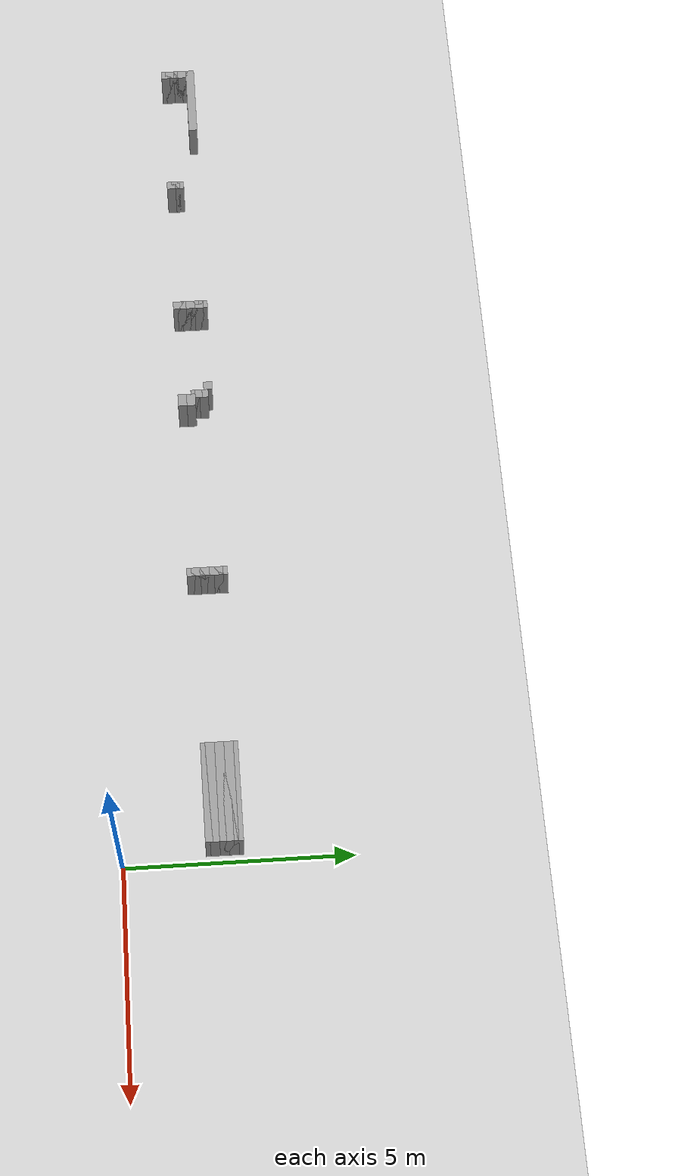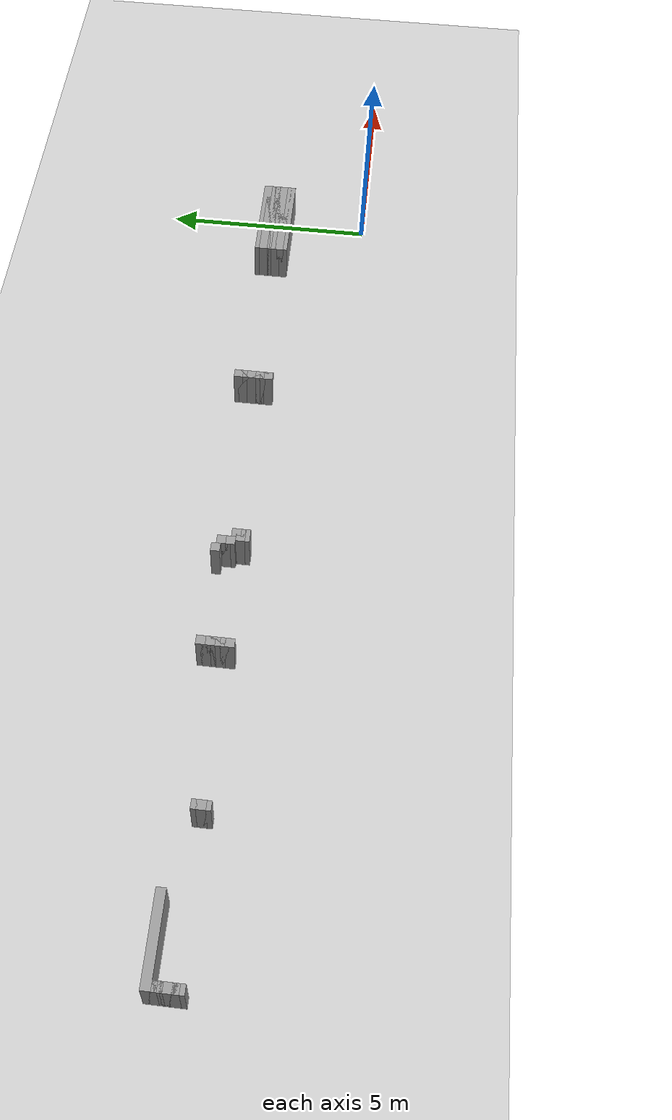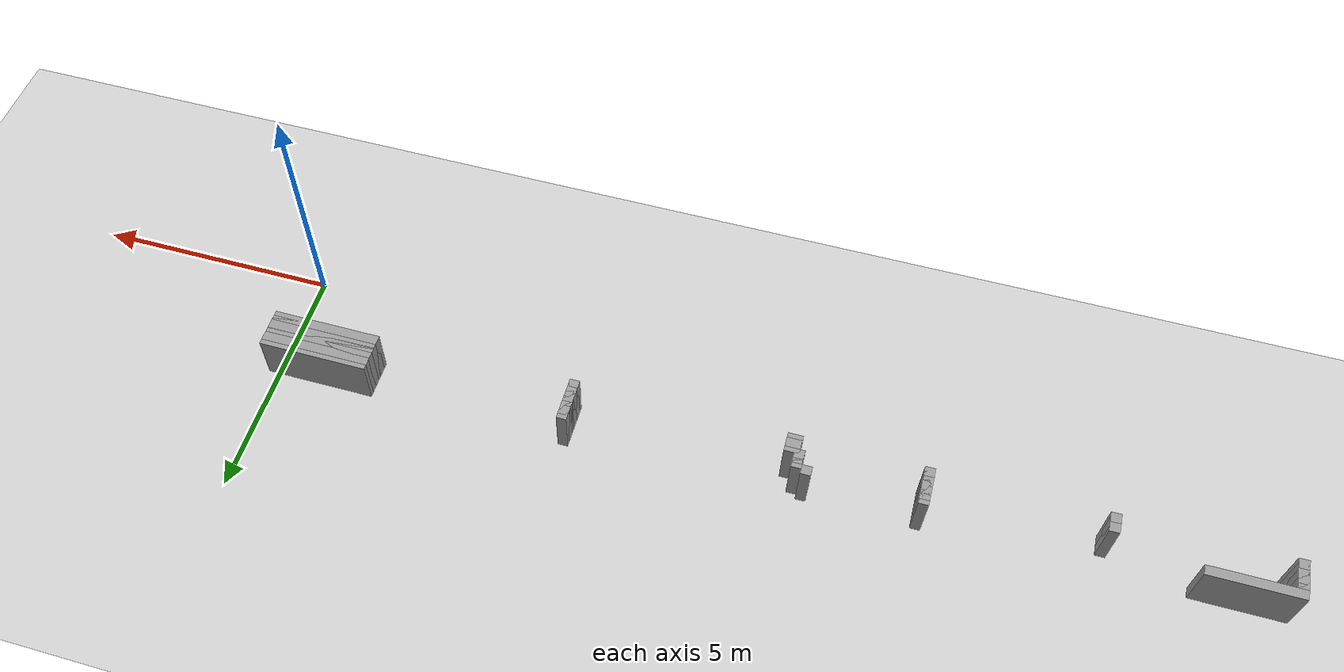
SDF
<sdf version="1.6">
 <world name="GridMap">
  <include><uri>model://sun</uri></include>
  <include><uri>model://ground_plane</uri></include>
  <model name="GridMap">
   <link name="Wall_(62.0,18.0)">
    <collision name="Wall_(62.0,18.0)_Collision">
     <geometry><box><size>0.2 0.2 1.0</size></box></geometry>
     <pose>-6.2 1.8 0.5 0 -0 0</pose>
    </collision>
    <visual name="Wall_(62.0,18.0)_Visual">
     <geometry><box><size>0.2 0.2 1.0</size></box></geometry>
     <pose>-6.2 1.8 0.5 0 -0 0</pose>
     <material>
      <script><uri>file://media/materials/scripts/gazebo.material</uri><name>Gazebo/Grey</name></script>
      <ambient>1 1 1 1</ambient>
     </material>
     <meta><layer>0</layer></meta>
    </visual>
    <pose>0 0 0.5 0 -0 0</pose>
   </link>
   <link name="Wall_(105.5,18.0)">
    <collision name="Wall_(105.5,18.0)_Collision">
     <geometry><box><size>0.30000000000000004 0.2 1.0</size></box></geometry>
     <pose>-10.55 1.8 0.5 0 -0 0</pose>
    </collision>
    <visual name="Wall_(105.5,18.0)_Visual">
     <geometry><box><size>0.30000000000000004 0.2 1.0</size></box></geometry>
     <pose>-10.55 1.8 0.5 0 -0 0</pose>
     <material>
      <script><uri>file://media/materials/scripts/gazebo.material</uri><name>Gazebo/Grey</name></script>
      <ambient>1 1 1 1</ambient>
     </material>
     <meta><layer>0</layer></meta>
    </visual>
    <pose>0 0 0.5 0 -0 0</pose>
   </link>
   <link name="Wall_(131.0,18.0)">
    <collision name="Wall_(131.0,18.0)_Collision">
     <geometry><box><size>0.2 0.2 1.0</size></box></geometry>
     <pose>-13.100000000000001 1.8 0.5 0 -0 0</pose>
    </collision>
    <visual name="Wall_(131.0,18.0)_Visual">
     <geometry><box><size>0.2 0.2 1.0</size></box></geometry>
     <pose>-13.100000000000001 1.8 0.5 0 -0 0</pose>
     <material>
      <script><uri>file://media/materials/scripts/gazebo.material</uri><name>Gazebo/Grey</name></script>
      <ambient>1 1 1 1</ambient>
     </material>
     <meta><layer>0</layer></meta>
    </visual>
    <pose>0 0 0.5 0 -0 0</pose>
   </link>
   <link name="Wall_(165.0,18.0)">
    <collision name="Wall_(165.0,18.0)_Collision">
     <geometry><box><size>0.2 0.2 1.0</size></box></geometry>
     <pose>-16.5 1.8 0.5 0 -0 0</pose>
    </collision>
    <visual name="Wall_(165.0,18.0)_Visual">
     <geometry><box><size>0.2 0.2 1.0</size></box></geometry>
     <pose>-16.5 1.8 0.5 0 -0 0</pose>
     <material>
      <script><uri>file://media/materials/scripts/gazebo.material</uri><name>Gazebo/Grey</name></script>
      <ambient>1 1 1 1</ambient>
     </material>
     <meta><layer>0</layer></meta>
    </visual>
    <pose>0 0 0.5 0 -0 0</pose>
   </link>
   <link name="Wall_(198.0,18.0)">
    <collision name="Wall_(198.0,18.0)_Collision">
     <geometry><box><size>0.2 0.2 1.0</size></box></geometry>
     <pose>-19.8 1.8 0.5 0 -0 0</pose>
    </collision>
    <visual name="Wall_(198.0,18.0)_Visual">
     <geometry><box><size>0.2 0.2 1.0</size></box></geometry>
     <pose>-19.8 1.8 0.5 0 -0 0</pose>
     <material>
      <script><uri>file://media/materials/scripts/gazebo.material</uri><name>Gazebo/Grey</name></script>
      <ambient>1 1 1 1</ambient>
     </material>
     <meta><layer>0</layer></meta>
    </visual>
    <pose>0 0 0.5 0 -0 0</pose>
   </link>
   <link name="Wall_(11.0,19.0)">
    <collision name="Wall_(11.0,19.0)_Collision">
     <geometry><box><size>2.2 0.2 1.0</size></box></geometry>
     <pose>-1.1 1.9000000000000001 0.5 0 -0 0</pose>
    </collision>
    <visual name="Wall_(11.0,19.0)_Visual">
     <geometry><box><size>2.2 0.2 1.0</size></box></geometry>
     <pose>-1.1 1.9000000000000001 0.5 0 -0 0</pose>
     <material>
      <script><uri>file://media/materials/scripts/gazebo.material</uri><name>Gazebo/Grey</name></script>
      <ambient>1 1 1 1</ambient>
     </material>
     <meta><layer>0</layer></meta>
    </visual>
    <pose>0 0 0.5 0 -0 0</pose>
   </link>
   <link name="Wall_(62.0,19.0)">
    <collision name="Wall_(62.0,19.0)_Collision">
     <geometry><box><size>0.2 0.2 1.0</size></box></geometry>
     <pose>-6.2 1.9000000000000001 0.5 0 -0 0</pose>
    </collision>
    <visual name="Wall_(62.0,19.0)_Visual">
     <geometry><box><size>0.2 0.2 1.0</size></box></geometry>
     <pose>-6.2 1.9000000000000001 0.5 0 -0 0</pose>
     <material>
      <script><uri>file://media/materials/scripts/gazebo.material</uri><name>Gazebo/Grey</name></script>
      <ambient>1 1 1 1</ambient>
     </material>
     <meta><layer>0</layer></meta>
    </visual>
    <pose>0 0 0.5 0 -0 0</pose>
   </link>
   <link name="Wall_(105.5,19.0)">
    <collision name="Wall_(105.5,19.0)_Collision">
     <geometry><box><size>0.30000000000000004 0.2 1.0</size></box></geometry>
     <pose>-10.55 1.9000000000000001 0.5 0 -0 0</pose>
    </collision>
    <visual name="Wall_(105.5,19.0)_Visual">
     <geometry><box><size>0.30000000000000004 0.2 1.0</size></box></geometry>
     <pose>-10.55 1.9000000000000001 0.5 0 -0 0</pose>
     <material>
      <script><uri>file://media/materials/scripts/gazebo.material</uri><name>Gazebo/Grey</name></script>
      <ambient>1 1 1 1</ambient>
     </material>
     <meta><layer>0</layer></meta>
    </visual>
    <pose>0 0 0.5 0 -0 0</pose>
   </link>
   <link name="Wall_(131.0,19.0)">
    <collision name="Wall_(131.0,19.0)_Collision">
     <geometry><box><size>0.2 0.2 1.0</size></box></geometry>
     <pose>-13.100000000000001 1.9000000000000001 0.5 0 -0 0</pose>
    </collision>
    <visual name="Wall_(131.0,19.0)_Visual">
     <geometry><box><size>0.2 0.2 1.0</size></box></geometry>
     <pose>-13.100000000000001 1.9000000000000001 0.5 0 -0 0</pose>
     <material>
      <script><uri>file://media/materials/scripts/gazebo.material</uri><name>Gazebo/Grey</name></script>
      <ambient>1 1 1 1</ambient>
     </material>
     <meta><layer>0</layer></meta>
    </visual>
    <pose>0 0 0.5 0 -0 0</pose>
   </link>
   <link name="Wall_(165.0,19.0)">
    <collision name="Wall_(165.0,19.0)_Collision">
     <geometry><box><size>0.2 0.2 1.0</size></box></geometry>
     <pose>-16.5 1.9000000000000001 0.5 0 -0 0</pose>
    </collision>
    <visual name="Wall_(165.0,19.0)_Visual">
     <geometry><box><size>0.2 0.2 1.0</size></box></geometry>
     <pose>-16.5 1.9000000000000001 0.5 0 -0 0</pose>
     <material>
      <script><uri>file://media/materials/scripts/gazebo.material</uri><name>Gazebo/Grey</name></script>
      <ambient>1 1 1 1</ambient>
     </material>
     <meta><layer>0</layer></meta>
    </visual>
    <pose>0 0 0.5 0 -0 0</pose>
   </link>
   <link name="Wall_(198.0,19.0)">
    <collision name="Wall_(198.0,19.0)_Collision">
     <geometry><box><size>0.2 0.2 1.0</size></box></geometry>
     <pose>-19.8 1.9000000000000001 0.5 0 -0 0</pose>
    </collision>
    <visual name="Wall_(198.0,19.0)_Visual">
     <geometry><box><size>0.2 0.2 1.0</size></box></geometry>
     <pose>-19.8 1.9000000000000001 0.5 0 -0 0</pose>
     <material>
      <script><uri>file://media/materials/scripts/gazebo.material</uri><name>Gazebo/Grey</name></script>
      <ambient>1 1 1 1</ambient>
     </material>
     <meta><layer>0</layer></meta>
    </visual>
    <pose>0 0 0.5 0 -0 0</pose>
   </link>
   <link name="Wall_(11.0,20.0)">
    <collision name="Wall_(11.0,20.0)_Collision">
     <geometry><box><size>2.2 0.2 1.0</size></box></geometry>
     <pose>-1.1 2.0 0.5 0 -0 0</pose>
    </collision>
    <visual name="Wall_(11.0,20.0)_Visual">
     <geometry><box><size>2.2 0.2 1.0</size></box></geometry>
     <pose>-1.1 2.0 0.5 0 -0 0</pose>
     <material>
      <script><uri>file://media/materials/scripts/gazebo.material</uri><name>Gazebo/Grey</name></script>
      <ambient>1 1 1 1</ambient>
     </material>
     <meta><layer>0</layer></meta>
    </visual>
    <pose>0 0 0.5 0 -0 0</pose>
   </link>
   <link name="Wall_(62.0,20.0)">
    <collision name="Wall_(62.0,20.0)_Collision">
     <geometry><box><size>0.2 0.2 1.0</size></box></geometry>
     <pose>-6.2 2.0 0.5 0 -0 0</pose>
    </collision>
    <visual name="Wall_(62.0,20.0)_Visual">
     <geometry><box><size>0.2 0.2 1.0</size></box></geometry>
     <pose>-6.2 2.0 0.5 0 -0 0</pose>
     <material>
      <script><uri>file://media/materials/scripts/gazebo.material</uri><name>Gazebo/Grey</name></script>
      <ambient>1 1 1 1</ambient>
     </material>
     <meta><layer>0</layer></meta>
    </visual>
    <pose>0 0 0.5 0 -0 0</pose>
   </link>
   <link name="Wall_(105.5,20.0)">
    <collision name="Wall_(105.5,20.0)_Collision">
     <geometry><box><size>0.30000000000000004 0.2 1.0</size></box></geometry>
     <pose>-10.55 2.0 0.5 0 -0 0</pose>
    </collision>
    <visual name="Wall_(105.5,20.0)_Visual">
     <geometry><box><size>0.30000000000000004 0.2 1.0</size></box></geometry>
     <pose>-10.55 2.0 0.5 0 -0 0</pose>
     <material>
      <script><uri>file://media/materials/scripts/gazebo.material</uri><name>Gazebo/Grey</name></script>
      <ambient>1 1 1 1</ambient>
     </material>
     <meta><layer>0</layer></meta>
    </visual>
    <pose>0 0 0.5 0 -0 0</pose>
   </link>
   <link name="Wall_(131.0,20.0)">
    <collision name="Wall_(131.0,20.0)_Collision">
     <geometry><box><size>0.2 0.2 1.0</size></box></geometry>
     <pose>-13.100000000000001 2.0 0.5 0 -0 0</pose>
    </collision>
    <visual name="Wall_(131.0,20.0)_Visual">
     <geometry><box><size>0.2 0.2 1.0</size></box></geometry>
     <pose>-13.100000000000001 2.0 0.5 0 -0 0</pose>
     <material>
      <script><uri>file://media/materials/scripts/gazebo.material</uri><name>Gazebo/Grey</name></script>
      <ambient>1 1 1 1</ambient>
     </material>
     <meta><layer>0</layer></meta>
    </visual>
    <pose>0 0 0.5 0 -0 0</pose>
   </link>
   <link name="Wall_(165.0,20.0)">
    <collision name="Wall_(165.0,20.0)_Collision">
     <geometry><box><size>0.2 0.2 1.0</size></box></geometry>
     <pose>-16.5 2.0 0.5 0 -0 0</pose>
    </collision>
    <visual name="Wall_(165.0,20.0)_Visual">
     <geometry><box><size>0.2 0.2 1.0</size></box></geometry>
     <pose>-16.5 2.0 0.5 0 -0 0</pose>
     <material>
      <script><uri>file://media/materials/scripts/gazebo.material</uri><name>Gazebo/Grey</name></script>
      <ambient>1 1 1 1</ambient>
     </material>
     <meta><layer>0</layer></meta>
    </visual>
    <pose>0 0 0.5 0 -0 0</pose>
   </link>
   <link name="Wall_(198.0,20.0)">
    <collision name="Wall_(198.0,20.0)_Collision">
     <geometry><box><size>0.2 0.2 1.0</size></box></geometry>
     <pose>-19.8 2.0 0.5 0 -0 0</pose>
    </collision>
    <visual name="Wall_(198.0,20.0)_Visual">
     <geometry><box><size>0.2 0.2 1.0</size></box></geometry>
     <pose>-19.8 2.0 0.5 0 -0 0</pose>
     <material>
      <script><uri>file://media/materials/scripts/gazebo.material</uri><name>Gazebo/Grey</name></script>
      <ambient>1 1 1 1</ambient>
     </material>
     <meta><layer>0</layer></meta>
    </visual>
    <pose>0 0 0.5 0 -0 0</pose>
   </link>
   <link name="Wall_(11.0,21.0)">
    <collision name="Wall_(11.0,21.0)_Collision">
     <geometry><box><size>2.2 0.2 1.0</size></box></geometry>
     <pose>-1.1 2.1 0.5 0 -0 0</pose>
    </collision>
    <visual name="Wall_(11.0,21.0)_Visual">
     <geometry><box><size>2.2 0.2 1.0</size></box></geometry>
     <pose>-1.1 2.1 0.5 0 -0 0</pose>
     <material>
      <script><uri>file://media/materials/scripts/gazebo.material</uri><name>Gazebo/Grey</name></script>
      <ambient>1 1 1 1</ambient>
     </material>
     <meta><layer>0</layer></meta>
    </visual>
    <pose>0 0 0.5 0 -0 0</pose>
   </link>
   <link name="Wall_(62.0,21.0)">
    <collision name="Wall_(62.0,21.0)_Collision">
     <geometry><box><size>0.2 0.2 1.0</size></box></geometry>
     <pose>-6.2 2.1 0.5 0 -0 0</pose>
    </collision>
    <visual name="Wall_(62.0,21.0)_Visual">
     <geometry><box><size>0.2 0.2 1.0</size></box></geometry>
     <pose>-6.2 2.1 0.5 0 -0 0</pose>
     <material>
      <script><uri>file://media/materials/scripts/gazebo.material</uri><name>Gazebo/Grey</name></script>
      <ambient>1 1 1 1</ambient>
     </material>
     <meta><layer>0</layer></meta>
    </visual>
    <pose>0 0 0.5 0 -0 0</pose>
   </link>
   <link name="Wall_(107.0,21.0)">
    <collision name="Wall_(107.0,21.0)_Collision">
     <geometry><box><size>0.2 0.2 1.0</size></box></geometry>
     <pose>-10.700000000000001 2.1 0.5 0 -0 0</pose>
    </collision>
    <visual name="Wall_(107.0,21.0)_Visual">
     <geometry><box><size>0.2 0.2 1.0</size></box></geometry>
     <pose>-10.700000000000001 2.1 0.5 0 -0 0</pose>
     <material>
      <script><uri>file://media/materials/scripts/gazebo.material</uri><name>Gazebo/Grey</name></script>
      <ambient>1 1 1 1</ambient>
     </material>
     <meta><layer>0</layer></meta>
    </visual>
    <pose>0 0 0.5 0 -0 0</pose>
   </link>
   <link name="Wall_(131.0,21.0)">
    <collision name="Wall_(131.0,21.0)_Collision">
     <geometry><box><size>0.2 0.2 1.0</size></box></geometry>
     <pose>-13.100000000000001 2.1 0.5 0 -0 0</pose>
    </collision>
    <visual name="Wall_(131.0,21.0)_Visual">
     <geometry><box><size>0.2 0.2 1.0</size></box></geometry>
     <pose>-13.100000000000001 2.1 0.5 0 -0 0</pose>
     <material>
      <script><uri>file://media/materials/scripts/gazebo.material</uri><name>Gazebo/Grey</name></script>
      <ambient>1 1 1 1</ambient>
     </material>
     <meta><layer>0</layer></meta>
    </visual>
    <pose>0 0 0.5 0 -0 0</pose>
   </link>
   <link name="Wall_(198.0,21.0)">
    <collision name="Wall_(198.0,21.0)_Collision">
     <geometry><box><size>0.2 0.2 1.0</size></box></geometry>
     <pose>-19.8 2.1 0.5 0 -0 0</pose>
    </collision>
    <visual name="Wall_(198.0,21.0)_Visual">
     <geometry><box><size>0.2 0.2 1.0</size></box></geometry>
     <pose>-19.8 2.1 0.5 0 -0 0</pose>
     <material>
      <script><uri>file://media/materials/scripts/gazebo.material</uri><name>Gazebo/Grey</name></script>
      <ambient>1 1 1 1</ambient>
     </material>
     <meta><layer>0</layer></meta>
    </visual>
    <pose>0 0 0.5 0 -0 0</pose>
   </link>
   <link name="Wall_(11.0,22.0)">
    <collision name="Wall_(11.0,22.0)_Collision">
     <geometry><box><size>2.2 0.2 1.0</size></box></geometry>
     <pose>-1.1 2.2 0.5 0 -0 0</pose>
    </collision>
    <visual name="Wall_(11.0,22.0)_Visual">
     <geometry><box><size>2.2 0.2 1.0</size></box></geometry>
     <pose>-1.1 2.2 0.5 0 -0 0</pose>
     <material>
      <script><uri>file://media/materials/scripts/gazebo.material</uri><name>Gazebo/Grey</name></script>
      <ambient>1 1 1 1</ambient>
     </material>
     <meta><layer>0</layer></meta>
    </visual>
    <pose>0 0 0.5 0 -0 0</pose>
   </link>
   <link name="Wall_(62.0,22.0)">
    <collision name="Wall_(62.0,22.0)_Collision">
     <geometry><box><size>0.2 0.2 1.0</size></box></geometry>
     <pose>-6.2 2.2 0.5 0 -0 0</pose>
    </collision>
    <visual name="Wall_(62.0,22.0)_Visual">
     <geometry><box><size>0.2 0.2 1.0</size></box></geometry>
     <pose>-6.2 2.2 0.5 0 -0 0</pose>
     <material>
      <script><uri>file://media/materials/scripts/gazebo.material</uri><name>Gazebo/Grey</name></script>
      <ambient>1 1 1 1</ambient>
     </material>
     <meta><layer>0</layer></meta>
    </visual>
    <pose>0 0 0.5 0 -0 0</pose>
   </link>
   <link name="Wall_(107.0,22.0)">
    <collision name="Wall_(107.0,22.0)_Collision">
     <geometry><box><size>0.2 0.2 1.0</size></box></geometry>
     <pose>-10.700000000000001 2.2 0.5 0 -0 0</pose>
    </collision>
    <visual name="Wall_(107.0,22.0)_Visual">
     <geometry><box><size>0.2 0.2 1.0</size></box></geometry>
     <pose>-10.700000000000001 2.2 0.5 0 -0 0</pose>
     <material>
      <script><uri>file://media/materials/scripts/gazebo.material</uri><name>Gazebo/Grey</name></script>
      <ambient>1 1 1 1</ambient>
     </material>
     <meta><layer>0</layer></meta>
    </visual>
    <pose>0 0 0.5 0 -0 0</pose>
   </link>
   <link name="Wall_(131.0,22.0)">
    <collision name="Wall_(131.0,22.0)_Collision">
     <geometry><box><size>0.2 0.2 1.0</size></box></geometry>
     <pose>-13.100000000000001 2.2 0.5 0 -0 0</pose>
    </collision>
    <visual name="Wall_(131.0,22.0)_Visual">
     <geometry><box><size>0.2 0.2 1.0</size></box></geometry>
     <pose>-13.100000000000001 2.2 0.5 0 -0 0</pose>
     <material>
      <script><uri>file://media/materials/scripts/gazebo.material</uri><name>Gazebo/Grey</name></script>
      <ambient>1 1 1 1</ambient>
     </material>
     <meta><layer>0</layer></meta>
    </visual>
    <pose>0 0 0.5 0 -0 0</pose>
   </link>
   <link name="Wall_(198.0,22.0)">
    <collision name="Wall_(198.0,22.0)_Collision">
     <geometry><box><size>0.2 0.2 1.0</size></box></geometry>
     <pose>-19.8 2.2 0.5 0 -0 0</pose>
    </collision>
    <visual name="Wall_(198.0,22.0)_Visual">
     <geometry><box><size>0.2 0.2 1.0</size></box></geometry>
     <pose>-19.8 2.2 0.5 0 -0 0</pose>
     <material>
      <script><uri>file://media/materials/scripts/gazebo.material</uri><name>Gazebo/Grey</name></script>
      <ambient>1 1 1 1</ambient>
     </material>
     <meta><layer>0</layer></meta>
    </visual>
    <pose>0 0 0.5 0 -0 0</pose>
   </link>
   <link name="Wall_(11.0,23.0)">
    <collision name="Wall_(11.0,23.0)_Collision">
     <geometry><box><size>2.2 0.2 1.0</size></box></geometry>
     <pose>-1.1 2.3000000000000003 0.5 0 -0 0</pose>
    </collision>
    <visual name="Wall_(11.0,23.0)_Visual">
     <geometry><box><size>2.2 0.2 1.0</size></box></geometry>
     <pose>-1.1 2.3000000000000003 0.5 0 -0 0</pose>
     <material>
      <script><uri>file://media/materials/scripts/gazebo.material</uri><name>Gazebo/Grey</name></script>
      <ambient>1 1 1 1</ambient>
     </material>
     <meta><layer>0</layer></meta>
    </visual>
    <pose>0 0 0.5 0 -0 0</pose>
   </link>
   <link name="Wall_(62.0,23.0)">
    <collision name="Wall_(62.0,23.0)_Collision">
     <geometry><box><size>0.2 0.2 1.0</size></box></geometry>
     <pose>-6.2 2.3000000000000003 0.5 0 -0 0</pose>
    </collision>
    <visual name="Wall_(62.0,23.0)_Visual">
     <geometry><box><size>0.2 0.2 1.0</size></box></geometry>
     <pose>-6.2 2.3000000000000003 0.5 0 -0 0</pose>
     <material>
      <script><uri>file://media/materials/scripts/gazebo.material</uri><name>Gazebo/Grey</name></script>
      <ambient>1 1 1 1</ambient>
     </material>
     <meta><layer>0</layer></meta>
    </visual>
    <pose>0 0 0.5 0 -0 0</pose>
   </link>
   <link name="Wall_(107.0,23.0)">
    <collision name="Wall_(107.0,23.0)_Collision">
     <geometry><box><size>0.2 0.2 1.0</size></box></geometry>
     <pose>-10.700000000000001 2.3000000000000003 0.5 0 -0 0</pose>
    </collision>
    <visual name="Wall_(107.0,23.0)_Visual">
     <geometry><box><size>0.2 0.2 1.0</size></box></geometry>
     <pose>-10.700000000000001 2.3000000000000003 0.5 0 -0 0</pose>
     <material>
      <script><uri>file://media/materials/scripts/gazebo.material</uri><name>Gazebo/Grey</name></script>
      <ambient>1 1 1 1</ambient>
     </material>
     <meta><layer>0</layer></meta>
    </visual>
    <pose>0 0 0.5 0 -0 0</pose>
   </link>
   <link name="Wall_(131.0,23.0)">
    <collision name="Wall_(131.0,23.0)_Collision">
     <geometry><box><size>0.2 0.2 1.0</size></box></geometry>
     <pose>-13.100000000000001 2.3000000000000003 0.5 0 -0 0</pose>
    </collision>
    <visual name="Wall_(131.0,23.0)_Visual">
     <geometry><box><size>0.2 0.2 1.0</size></box></geometry>
     <pose>-13.100000000000001 2.3000000000000003 0.5 0 -0 0</pose>
     <material>
      <script><uri>file://media/materials/scripts/gazebo.material</uri><name>Gazebo/Grey</name></script>
      <ambient>1 1 1 1</ambient>
     </material>
     <meta><layer>0</layer></meta>
    </visual>
    <pose>0 0 0.5 0 -0 0</pose>
   </link>
   <link name="Wall_(198.0,23.0)">
    <collision name="Wall_(198.0,23.0)_Collision">
     <geometry><box><size>0.2 0.2 1.0</size></box></geometry>
     <pose>-19.8 2.3000000000000003 0.5 0 -0 0</pose>
    </collision>
    <visual name="Wall_(198.0,23.0)_Visual">
     <geometry><box><size>0.2 0.2 1.0</size></box></geometry>
     <pose>-19.8 2.3000000000000003 0.5 0 -0 0</pose>
     <material>
      <script><uri>file://media/materials/scripts/gazebo.material</uri><name>Gazebo/Grey</name></script>
      <ambient>1 1 1 1</ambient>
     </material>
     <meta><layer>0</layer></meta>
    </visual>
    <pose>0 0 0.5 0 -0 0</pose>
   </link>
   <link name="Wall_(11.0,24.0)">
    <collision name="Wall_(11.0,24.0)_Collision">
     <geometry><box><size>2.2 0.2 1.0</size></box></geometry>
     <pose>-1.1 2.4000000000000004 0.5 0 -0 0</pose>
    </collision>
    <visual name="Wall_(11.0,24.0)_Visual">
     <geometry><box><size>2.2 0.2 1.0</size></box></geometry>
     <pose>-1.1 2.4000000000000004 0.5 0 -0 0</pose>
     <material>
      <script><uri>file://media/materials/scripts/gazebo.material</uri><name>Gazebo/Grey</name></script>
      <ambient>1 1 1 1</ambient>
     </material>
     <meta><layer>0</layer></meta>
    </visual>
    <pose>0 0 0.5 0 -0 0</pose>
   </link>
   <link name="Wall_(62.0,24.0)">
    <collision name="Wall_(62.0,24.0)_Collision">
     <geometry><box><size>0.2 0.2 1.0</size></box></geometry>
     <pose>-6.2 2.4000000000000004 0.5 0 -0 0</pose>
    </collision>
    <visual name="Wall_(62.0,24.0)_Visual">
     <geometry><box><size>0.2 0.2 1.0</size></box></geometry>
     <pose>-6.2 2.4000000000000004 0.5 0 -0 0</pose>
     <material>
      <script><uri>file://media/materials/scripts/gazebo.material</uri><name>Gazebo/Grey</name></script>
      <ambient>1 1 1 1</ambient>
     </material>
     <meta><layer>0</layer></meta>
    </visual>
    <pose>0 0 0.5 0 -0 0</pose>
   </link>
   <link name="Wall_(109.0,24.0)">
    <collision name="Wall_(109.0,24.0)_Collision">
     <geometry><box><size>0.2 0.2 1.0</size></box></geometry>
     <pose>-10.9 2.4000000000000004 0.5 0 -0 0</pose>
    </collision>
    <visual name="Wall_(109.0,24.0)_Visual">
     <geometry><box><size>0.2 0.2 1.0</size></box></geometry>
     <pose>-10.9 2.4000000000000004 0.5 0 -0 0</pose>
     <material>
      <script><uri>file://media/materials/scripts/gazebo.material</uri><name>Gazebo/Grey</name></script>
      <ambient>1 1 1 1</ambient>
     </material>
     <meta><layer>0</layer></meta>
    </visual>
    <pose>0 0 0.5 0 -0 0</pose>
   </link>
   <link name="Wall_(131.0,24.0)">
    <collision name="Wall_(131.0,24.0)_Collision">
     <geometry><box><size>0.2 0.2 1.0</size></box></geometry>
     <pose>-13.100000000000001 2.4000000000000004 0.5 0 -0 0</pose>
    </collision>
    <visual name="Wall_(131.0,24.0)_Visual">
     <geometry><box><size>0.2 0.2 1.0</size></box></geometry>
     <pose>-13.100000000000001 2.4000000000000004 0.5 0 -0 0</pose>
     <material>
      <script><uri>file://media/materials/scripts/gazebo.material</uri><name>Gazebo/Grey</name></script>
      <ambient>1 1 1 1</ambient>
     </material>
     <meta><layer>0</layer></meta>
    </visual>
    <pose>0 0 0.5 0 -0 0</pose>
   </link>
   <link name="Wall_(190.0,24.0)">
    <collision name="Wall_(190.0,24.0)_Collision">
     <geometry><box><size>1.8 0.2 1.0</size></box></geometry>
     <pose>-19.0 2.4000000000000004 0.5 0 -0 0</pose>
    </collision>
    <visual name="Wall_(190.0,24.0)_Visual">
     <geometry><box><size>1.8 0.2 1.0</size></box></geometry>
     <pose>-19.0 2.4000000000000004 0.5 0 -0 0</pose>
     <material>
      <script><uri>file://media/materials/scripts/gazebo.material</uri><name>Gazebo/Grey</name></script>
      <ambient>1 1 1 1</ambient>
     </material>
     <meta><layer>0</layer></meta>
    </visual>
    <pose>0 0 0.5 0 -0 0</pose>
   </link>
   <link name="Wall_(11.0,25.0)">
    <collision name="Wall_(11.0,25.0)_Collision">
     <geometry><box><size>2.2 0.2 1.0</size></box></geometry>
     <pose>-1.1 2.5 0.5 0 -0 0</pose>
    </collision>
    <visual name="Wall_(11.0,25.0)_Visual">
     <geometry><box><size>2.2 0.2 1.0</size></box></geometry>
     <pose>-1.1 2.5 0.5 0 -0 0</pose>
     <material>
      <script><uri>file://media/materials/scripts/gazebo.material</uri><name>Gazebo/Grey</name></script>
      <ambient>1 1 1 1</ambient>
     </material>
     <meta><layer>0</layer></meta>
    </visual>
    <pose>0 0 0.5 0 -0 0</pose>
   </link>
   <link name="Wall_(62.0,25.0)">
    <collision name="Wall_(62.0,25.0)_Collision">
     <geometry><box><size>0.2 0.2 1.0</size></box></geometry>
     <pose>-6.2 2.5 0.5 0 -0 0</pose>
    </collision>
    <visual name="Wall_(62.0,25.0)_Visual">
     <geometry><box><size>0.2 0.2 1.0</size></box></geometry>
     <pose>-6.2 2.5 0.5 0 -0 0</pose>
     <material>
      <script><uri>file://media/materials/scripts/gazebo.material</uri><name>Gazebo/Grey</name></script>
      <ambient>1 1 1 1</ambient>
     </material>
     <meta><layer>0</layer></meta>
    </visual>
    <pose>0 0 0.5 0 -0 0</pose>
   </link>
   <static>1</static>
  </model>
 </world>
</sdf>
